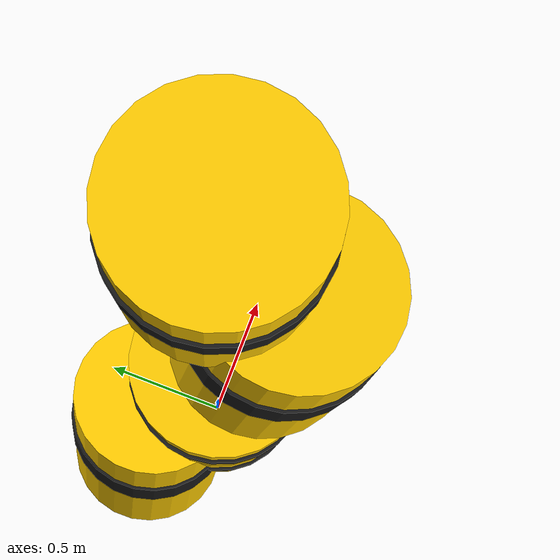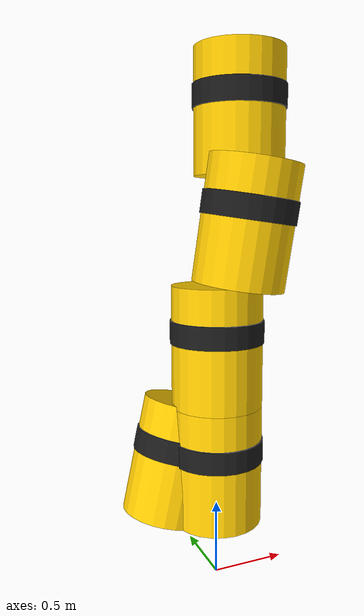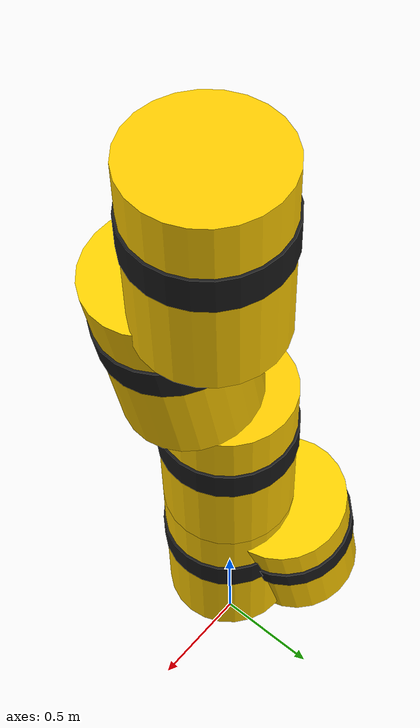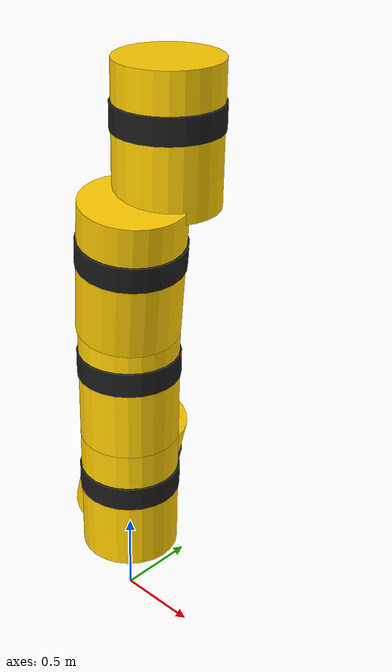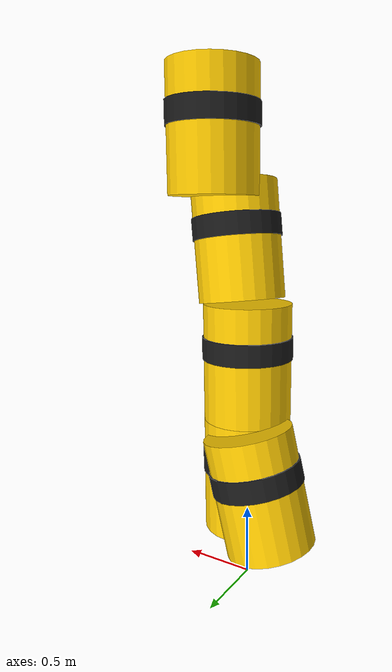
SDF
<?xml version="1.0" ?>
<sdf version="1.7">

  <model name="stacked_hazardous_barrels">

    <static>true</static>

    <!-- BARREL 1 (BASE) -->
    <include>
      <uri>model://hazardous_barrel</uri>
      <name>barrel_1</name>
      <pose>0 0 0.4 0 0 0</pose>
    </include>

    <!-- BARREL 2 -->
    <include>
      <uri>model://hazardous_barrel</uri>
      <name>barrel_2</name>
      <pose>0.0 0.0 1.2 0 0 0</pose>
    </include>

    <!-- BARREL 3 (slightly tilted) -->
    <include>
      <uri>model://hazardous_barrel</uri>
      <name>barrel_3</name>
      <pose>0.1 -0.1 2.0 0.1 0.1 0.3</pose>
    </include>

    <!-- BARREL 4 (fallen / unstable) -->
    <include>
      <uri>model://hazardous_barrel</uri>
      <name>barrel_4</name>
      <pose>-0.3 0.2 0.4 0.2 0.1 1.2</pose>
    </include>

    <!-- BARREL 5 (top, slightly rotated) -->
    <include>
      <uri>model://hazardous_barrel</uri>
      <name>barrel_5</name>
      <pose>0.2 0.1 2.7 0 0 1.57</pose>
    </include>

  </model>

</sdf>

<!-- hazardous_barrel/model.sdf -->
<sdf version="1.7">
  <model name="hazardous_barrel">
    <link name="link">
      <inertial>
        <mass>20.0</mass>
        <inertia>
          <ixx>0.7</ixx>
          <iyy>0.7</iyy>
          <izz>0.5</izz>
        </inertia>
      </inertial>
      <collision name="collision">
        <pose>0 0 0.4 0 0 0</pose>
        <geometry>
          <cylinder>
            <radius>0.3</radius>
            <length>0.8</length>
          </cylinder>
        </geometry>
      </collision>
      <!-- Cuerpo Amarillo -->
      <visual name="visual_body">
        <pose>0 0 0.4 0 0 0</pose>
        <geometry>
          <cylinder>
            <radius>0.3</radius>
            <length>0.8</length>
          </cylinder>
        </geometry>
        <material>
          <ambient>1 0.8 0 1</ambient>
          <diffuse>1 0.8 0 1</diffuse>
          <specular>0.5 0.5 0.5 1</specular>
        </material>
      </visual>
      <!-- Franja Negra -->
      <visual name="visual_stripe">
        <pose>0 0 0.5 0 0 0</pose>
        <geometry>
          <cylinder>
            <radius>0.31</radius>
            <length>0.15</length>
          </cylinder>
        </geometry>
        <material>
          <ambient>0.1 0.1 0.1 1</ambient>
          <diffuse>0.1 0.1 0.1 1</diffuse>
        </material>
      </visual>
    </link>
  </model>
</sdf>
